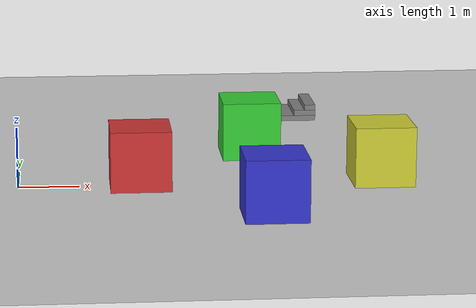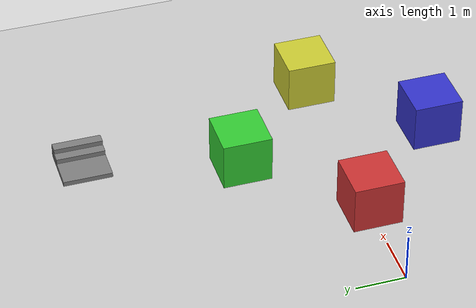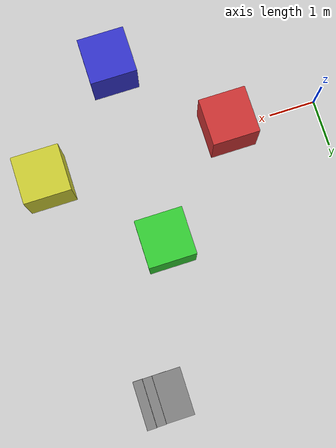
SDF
<?xml version="1.0" ?>
<sdf version="1.9">
  <world name="obstacle_field">
    <physics name="1ms" type="ignored">
      <max_step_size>0.001</max_step_size>
      <real_time_factor>1.0</real_time_factor>
    </physics>

    <plugin filename="gz-sim-physics-system" name="gz::sim::systems::Physics"/>
    <plugin filename="gz-sim-user-commands-system" name="gz::sim::systems::UserCommands"/>
    <plugin filename="gz-sim-scene-broadcaster-system" name="gz::sim::systems::SceneBroadcaster"/>
    <plugin filename="gz-sim-sensors-system" name="gz::sim::systems::Sensors">
      <render_engine>ogre2</render_engine>
    </plugin>

    <light type="directional" name="sun">
      <cast_shadows>true</cast_shadows>
      <pose>0 0 10 0 0 0</pose>
      <diffuse>0.8 0.8 0.8 1</diffuse>
      <specular>0.2 0.2 0.2 1</specular>
      <attenuation>
        <range>1000</range>
        <constant>0.9</constant>
        <linear>0.01</linear>
        <quadratic>0.001</quadratic>
      </attenuation>
      <direction>-0.5 0.1 -0.9</direction>
    </light>

    <model name="ground_plane">
      <static>true</static>
      <link name="link">
        <collision name="collision">
          <geometry>
            <plane>
              <normal>0 0 1</normal>
              <size>100 100</size>
            </plane>
          </geometry>
        </collision>
        <visual name="visual">
          <geometry>
            <plane>
              <normal>0 0 1</normal>
              <size>100 100</size>
            </plane>
          </geometry>
          <material>
            <ambient>0.8 0.8 0.8 1</ambient>
            <diffuse>0.8 0.8 0.8 1</diffuse>
            <specular>0.8 0.8 0.8 1</specular>
          </material>
        </visual>
      </link>
    </model>

    <!-- Obstacles -->
    <model name="box1">
      <static>true</static>
      <pose>2 0 0.5 0 0 0</pose>
      <link name="link">
        <collision name="collision">
          <geometry>
            <box><size>1 1 1</size></box>
          </geometry>
        </collision>
        <visual name="visual">
          <geometry>
            <box><size>1 1 1</size></box>
          </geometry>
          <material>
            <ambient>0.8 0.2 0.2 1</ambient>
            <diffuse>0.8 0.2 0.2 1</diffuse>
          </material>
        </visual>
      </link>
    </model>

    <model name="box2">
      <static>true</static>
      <pose>4 2 0.5 0 0 0</pose>
      <link name="link">
        <collision name="collision">
          <geometry>
            <box><size>1 1 1</size></box>
          </geometry>
        </collision>
        <visual name="visual">
          <geometry>
            <box><size>1 1 1</size></box>
          </geometry>
          <material>
            <ambient>0.2 0.8 0.2 1</ambient>
            <diffuse>0.2 0.8 0.2 1</diffuse>
          </material>
        </visual>
      </link>
    </model>

    <model name="box3">
      <static>true</static>
      <pose>4 -2 0.5 0 0 0</pose>
      <link name="link">
        <collision name="collision">
          <geometry>
            <box><size>1 1 1</size></box>
          </geometry>
        </collision>
        <visual name="visual">
          <geometry>
            <box><size>1 1 1</size></box>
          </geometry>
          <material>
            <ambient>0.2 0.2 0.8 1</ambient>
            <diffuse>0.2 0.2 0.8 1</diffuse>
          </material>
        </visual>
      </link>
    </model>

    <model name="box4">
      <static>true</static>
      <pose>6 0 0.5 0 0 0</pose>
      <link name="link">
        <collision name="collision">
          <geometry>
            <box><size>1 1 1</size></box>
          </geometry>
        </collision>
        <visual name="visual">
          <geometry>
            <box><size>1 1 1</size></box>
          </geometry>
          <material>
            <ambient>0.8 0.8 0.2 1</ambient>
            <diffuse>0.8 0.8 0.2 1</diffuse>
          </material>
        </visual>
      </link>
    </model>

    <!-- Staircase Placeholder Prop -->
    <model name="stairs_prop">
      <static>true</static>
      <pose>5 5 0 0 0 0</pose>

      <!-- Step 1 (Bottom) -->
      <link name="step1">
        <pose>0 0 0.05 0 0 0</pose>
        <collision name="collision">
          <geometry><box><size>1.0 1.0 0.1</size></box></geometry>
        </collision>
        <visual name="visual">
          <geometry><box><size>1.0 1.0 0.1</size></box></geometry>
          <material><ambient>0.5 0.5 0.5 1</ambient><diffuse>0.5 0.5 0.5 1</diffuse></material>
        </visual>
      </link>

      <!-- Step 2 -->
      <link name="step2">
        <pose>0.3 0 0.15 0 0 0</pose>
        <collision name="collision">
          <geometry><box><size>0.4 1.0 0.1</size></box></geometry>
        </collision>
        <visual name="visual">
          <geometry><box><size>0.4 1.0 0.1</size></box></geometry>
          <material><ambient>0.5 0.5 0.5 1</ambient><diffuse>0.5 0.5 0.5 1</diffuse></material>
        </visual>
      </link>

      <!-- Step 3 (Top) -->
      <link name="step3">
        <pose>0.4 0 0.25 0 0 0</pose>
        <collision name="collision">
          <geometry><box><size>0.2 1.0 0.1</size></box></geometry>
        </collision>
        <visual name="visual">
          <geometry><box><size>0.2 1.0 0.1</size></box></geometry>
          <material><ambient>0.5 0.5 0.5 1</ambient><diffuse>0.5 0.5 0.5 1</diffuse></material>
        </visual>
      </link>
    </model>
  </world>
</sdf>
